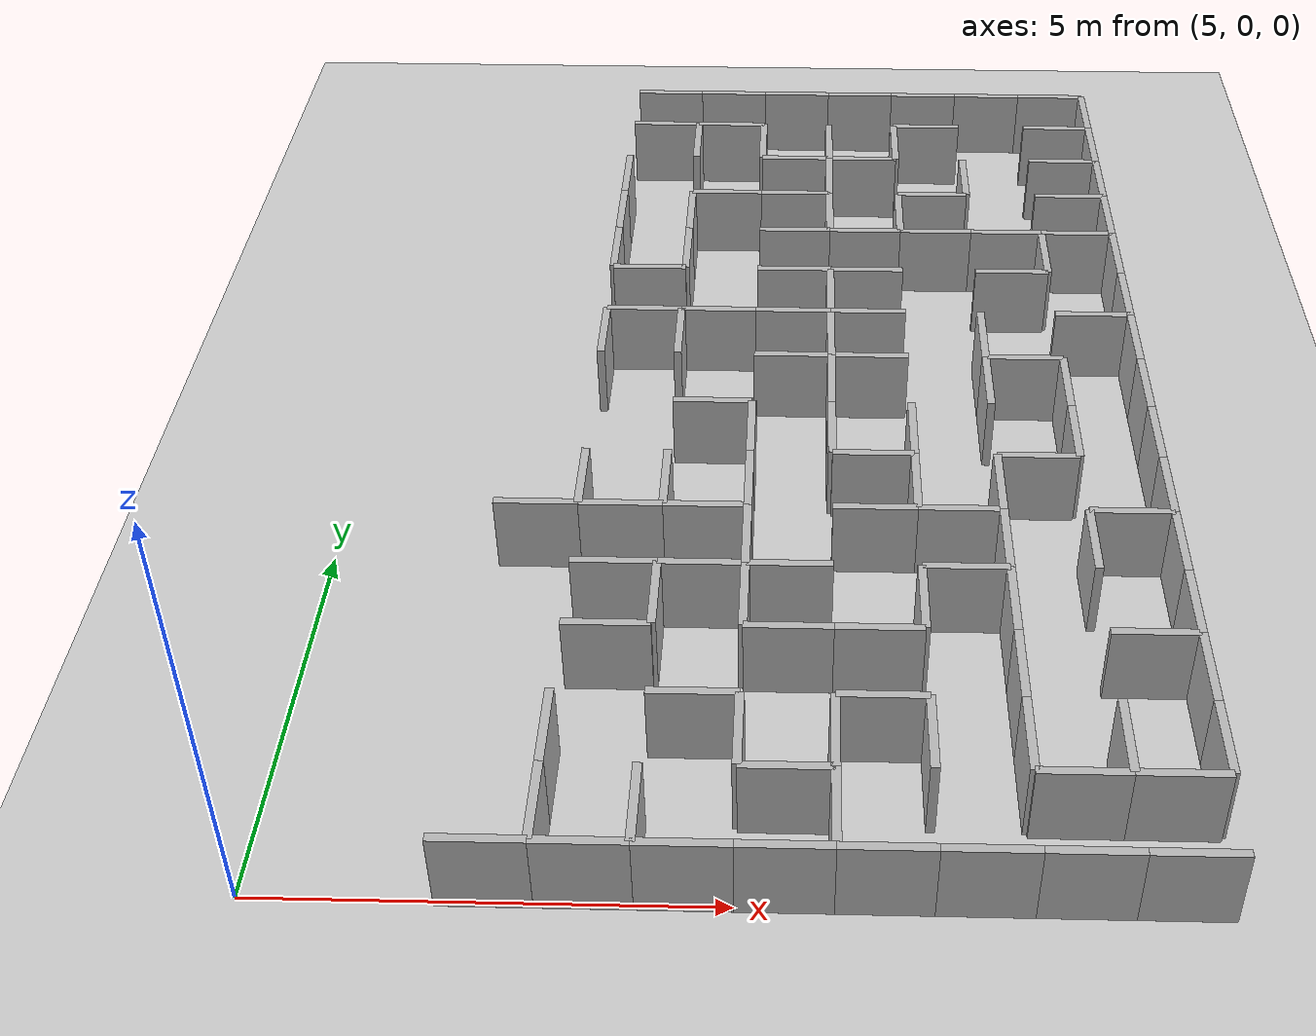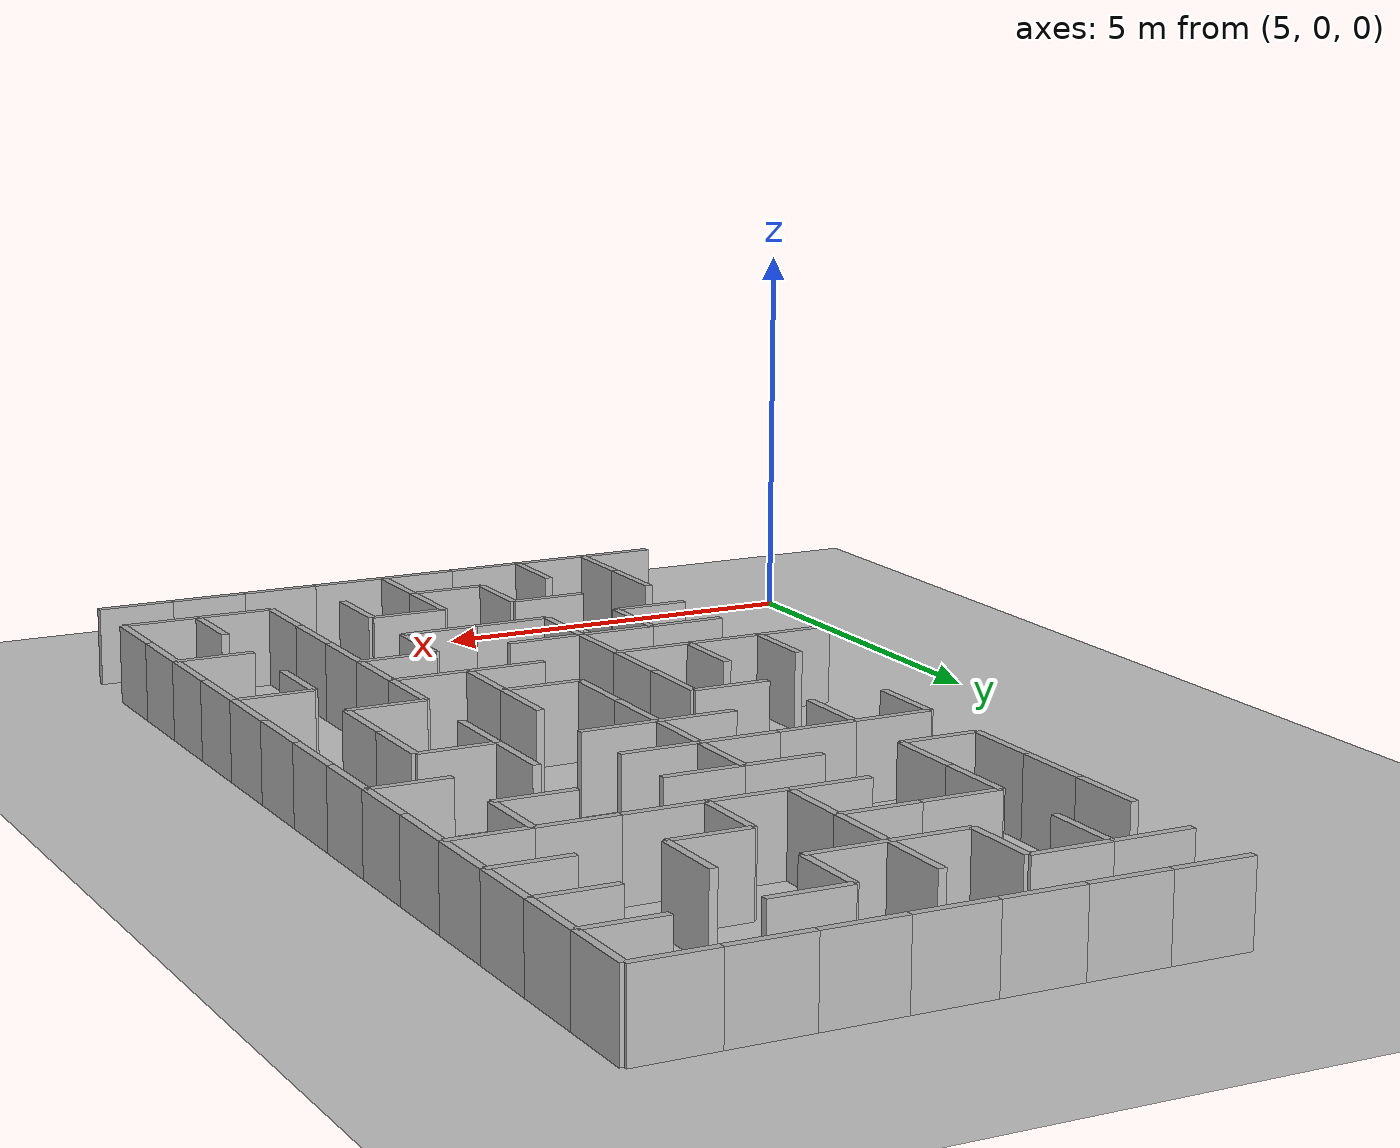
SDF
<sdf version="1.6">
 <world name="maze">
  <include><uri>model://ground_plane</uri></include>
  <model name="wall_r0_c8_N_b">
   <static>true</static>
   <pose>8.5 15.0 0.5 0 0 0</pose>
   <link name="link">
    <collision name="collision"><geometry><box><size>1.0 0.1 1.0</size></box></geometry></collision>
    <visual name="visual"><geometry><box><size>1.0 0.1 1.0</size></box></geometry></visual>
   </link>
  </model>
  <model name="wall_r0_c9_N_b">
   <static>true</static>
   <pose>9.5 15.0 0.5 0 0 0</pose>
   <link name="link">
    <collision name="collision"><geometry><box><size>1.0 0.1 1.0</size></box></geometry></collision>
    <visual name="visual"><geometry><box><size>1.0 0.1 1.0</size></box></geometry></visual>
   </link>
  </model>
  <model name="wall_r0_c10_N_b">
   <static>true</static>
   <pose>10.5 15.0 0.5 0 0 0</pose>
   <link name="link">
    <collision name="collision"><geometry><box><size>1.0 0.1 1.0</size></box></geometry></collision>
    <visual name="visual"><geometry><box><size>1.0 0.1 1.0</size></box></geometry></visual>
   </link>
  </model>
  <model name="wall_r0_c11_N_b">
   <static>true</static>
   <pose>11.5 15.0 0.5 0 0 0</pose>
   <link name="link">
    <collision name="collision"><geometry><box><size>1.0 0.1 1.0</size></box></geometry></collision>
    <visual name="visual"><geometry><box><size>1.0 0.1 1.0</size></box></geometry></visual>
   </link>
  </model>
  <model name="wall_r0_c12_N_b">
   <static>true</static>
   <pose>12.5 15.0 0.5 0 0 0</pose>
   <link name="link">
    <collision name="collision"><geometry><box><size>1.0 0.1 1.0</size></box></geometry></collision>
    <visual name="visual"><geometry><box><size>1.0 0.1 1.0</size></box></geometry></visual>
   </link>
  </model>
  <model name="wall_r0_c13_N_b">
   <static>true</static>
   <pose>13.5 15.0 0.5 0 0 0</pose>
   <link name="link">
    <collision name="collision"><geometry><box><size>1.0 0.1 1.0</size></box></geometry></collision>
    <visual name="visual"><geometry><box><size>1.0 0.1 1.0</size></box></geometry></visual>
   </link>
  </model>
  <model name="wall_r0_c14_N_b">
   <static>true</static>
   <pose>14.5 15.0 0.5 0 0 0</pose>
   <link name="link">
    <collision name="collision"><geometry><box><size>1.0 0.1 1.0</size></box></geometry></collision>
    <visual name="visual"><geometry><box><size>1.0 0.1 1.0</size></box></geometry></visual>
   </link>
  </model>
  <model name="wall_r0_c14_E_b">
   <static>true</static>
   <pose>15.0 14.5 0.5 0 0 0</pose>
   <link name="link">
    <collision name="collision"><geometry><box><size>0.1 1.0 1.0</size></box></geometry></collision>
    <visual name="visual"><geometry><box><size>0.1 1.0 1.0</size></box></geometry></visual>
   </link>
  </model>
  <model name="wall_r1_c8_N">
   <static>true</static>
   <pose>8.5 14.0 0.5 0 0 0</pose>
   <link name="link">
    <collision name="collision"><geometry><box><size>1.0 0.1 1.0</size></box></geometry></collision>
    <visual name="visual"><geometry><box><size>1.0 0.1 1.0</size></box></geometry></visual>
   </link>
  </model>
  <model name="wall_r1_c9_N">
   <static>true</static>
   <pose>9.5 14.0 0.5 0 0 0</pose>
   <link name="link">
    <collision name="collision"><geometry><box><size>1.0 0.1 1.0</size></box></geometry></collision>
    <visual name="visual"><geometry><box><size>1.0 0.1 1.0</size></box></geometry></visual>
   </link>
  </model>
  <model name="wall_r1_c9_W">
   <static>true</static>
   <pose>9.0 13.5 0.5 0 0 0</pose>
   <link name="link">
    <collision name="collision"><geometry><box><size>0.1 1.0 1.0</size></box></geometry></collision>
    <visual name="visual"><geometry><box><size>0.1 1.0 1.0</size></box></geometry></visual>
   </link>
  </model>
  <model name="wall_r1_c10_W">
   <static>true</static>
   <pose>10.0 13.5 0.5 0 0 0</pose>
   <link name="link">
    <collision name="collision"><geometry><box><size>0.1 1.0 1.0</size></box></geometry></collision>
    <visual name="visual"><geometry><box><size>0.1 1.0 1.0</size></box></geometry></visual>
   </link>
  </model>
  <model name="wall_r1_c11_W">
   <static>true</static>
   <pose>11.0 13.5 0.5 0 0 0</pose>
   <link name="link">
    <collision name="collision"><geometry><box><size>0.1 1.0 1.0</size></box></geometry></collision>
    <visual name="visual"><geometry><box><size>0.1 1.0 1.0</size></box></geometry></visual>
   </link>
  </model>
  <model name="wall_r1_c12_N">
   <static>true</static>
   <pose>12.5 14.0 0.5 0 0 0</pose>
   <link name="link">
    <collision name="collision"><geometry><box><size>1.0 0.1 1.0</size></box></geometry></collision>
    <visual name="visual"><geometry><box><size>1.0 0.1 1.0</size></box></geometry></visual>
   </link>
  </model>
  <model name="wall_r1_c12_W">
   <static>true</static>
   <pose>12.0 13.5 0.5 0 0 0</pose>
   <link name="link">
    <collision name="collision"><geometry><box><size>0.1 1.0 1.0</size></box></geometry></collision>
    <visual name="visual"><geometry><box><size>0.1 1.0 1.0</size></box></geometry></visual>
   </link>
  </model>
  <model name="wall_r1_c14_N">
   <static>true</static>
   <pose>14.5 14.0 0.5 0 0 0</pose>
   <link name="link">
    <collision name="collision"><geometry><box><size>1.0 0.1 1.0</size></box></geometry></collision>
    <visual name="visual"><geometry><box><size>1.0 0.1 1.0</size></box></geometry></visual>
   </link>
  </model>
  <model name="wall_r1_c14_E_b">
   <static>true</static>
   <pose>15.0 13.5 0.5 0 0 0</pose>
   <link name="link">
    <collision name="collision"><geometry><box><size>0.1 1.0 1.0</size></box></geometry></collision>
    <visual name="visual"><geometry><box><size>0.1 1.0 1.0</size></box></geometry></visual>
   </link>
  </model>
  <model name="wall_r2_c8_W">
   <static>true</static>
   <pose>8.0 12.5 0.5 0 0 0</pose>
   <link name="link">
    <collision name="collision"><geometry><box><size>0.1 1.0 1.0</size></box></geometry></collision>
    <visual name="visual"><geometry><box><size>0.1 1.0 1.0</size></box></geometry></visual>
   </link>
  </model>
  <model name="wall_r2_c10_N">
   <static>true</static>
   <pose>10.5 13.0 0.5 0 0 0</pose>
   <link name="link">
    <collision name="collision"><geometry><box><size>1.0 0.1 1.0</size></box></geometry></collision>
    <visual name="visual"><geometry><box><size>1.0 0.1 1.0</size></box></geometry></visual>
   </link>
  </model>
  <model name="wall_r2_c11_N">
   <static>true</static>
   <pose>11.5 13.0 0.5 0 0 0</pose>
   <link name="link">
    <collision name="collision"><geometry><box><size>1.0 0.1 1.0</size></box></geometry></collision>
    <visual name="visual"><geometry><box><size>1.0 0.1 1.0</size></box></geometry></visual>
   </link>
  </model>
  <model name="wall_r2_c11_W">
   <static>true</static>
   <pose>11.0 12.5 0.5 0 0 0</pose>
   <link name="link">
    <collision name="collision"><geometry><box><size>0.1 1.0 1.0</size></box></geometry></collision>
    <visual name="visual"><geometry><box><size>0.1 1.0 1.0</size></box></geometry></visual>
   </link>
  </model>
  <model name="wall_r2_c13_W">
   <static>true</static>
   <pose>13.0 12.5 0.5 0 0 0</pose>
   <link name="link">
    <collision name="collision"><geometry><box><size>0.1 1.0 1.0</size></box></geometry></collision>
    <visual name="visual"><geometry><box><size>0.1 1.0 1.0</size></box></geometry></visual>
   </link>
  </model>
  <model name="wall_r2_c14_N">
   <static>true</static>
   <pose>14.5 13.0 0.5 0 0 0</pose>
   <link name="link">
    <collision name="collision"><geometry><box><size>1.0 0.1 1.0</size></box></geometry></collision>
    <visual name="visual"><geometry><box><size>1.0 0.1 1.0</size></box></geometry></visual>
   </link>
  </model>
  <model name="wall_r2_c14_E_b">
   <static>true</static>
   <pose>15.0 12.5 0.5 0 0 0</pose>
   <link name="link">
    <collision name="collision"><geometry><box><size>0.1 1.0 1.0</size></box></geometry></collision>
    <visual name="visual"><geometry><box><size>0.1 1.0 1.0</size></box></geometry></visual>
   </link>
  </model>
  <model name="wall_r3_c8_W">
   <static>true</static>
   <pose>8.0 11.5 0.5 0 0 0</pose>
   <link name="link">
    <collision name="collision"><geometry><box><size>0.1 1.0 1.0</size></box></geometry></collision>
    <visual name="visual"><geometry><box><size>0.1 1.0 1.0</size></box></geometry></visual>
   </link>
  </model>
  <model name="wall_r3_c9_N">
   <static>true</static>
   <pose>9.5 12.0 0.5 0 0 0</pose>
   <link name="link">
    <collision name="collision"><geometry><box><size>1.0 0.1 1.0</size></box></geometry></collision>
    <visual name="visual"><geometry><box><size>1.0 0.1 1.0</size></box></geometry></visual>
   </link>
  </model>
  <model name="wall_r3_c9_W">
   <static>true</static>
   <pose>9.0 11.5 0.5 0 0 0</pose>
   <link name="link">
    <collision name="collision"><geometry><box><size>0.1 1.0 1.0</size></box></geometry></collision>
    <visual name="visual"><geometry><box><size>0.1 1.0 1.0</size></box></geometry></visual>
   </link>
  </model>
  <model name="wall_r3_c10_N">
   <static>true</static>
   <pose>10.5 12.0 0.5 0 0 0</pose>
   <link name="link">
    <collision name="collision"><geometry><box><size>1.0 0.1 1.0</size></box></geometry></collision>
    <visual name="visual"><geometry><box><size>1.0 0.1 1.0</size></box></geometry></visual>
   </link>
  </model>
  <model name="wall_r3_c11_W">
   <static>true</static>
   <pose>11.0 11.5 0.5 0 0 0</pose>
   <link name="link">
    <collision name="collision"><geometry><box><size>0.1 1.0 1.0</size></box></geometry></collision>
    <visual name="visual"><geometry><box><size>0.1 1.0 1.0</size></box></geometry></visual>
   </link>
  </model>
  <model name="wall_r3_c12_N">
   <static>true</static>
   <pose>12.5 12.0 0.5 0 0 0</pose>
   <link name="link">
    <collision name="collision"><geometry><box><size>1.0 0.1 1.0</size></box></geometry></collision>
    <visual name="visual"><geometry><box><size>1.0 0.1 1.0</size></box></geometry></visual>
   </link>
  </model>
  <model name="wall_r3_c12_W">
   <static>true</static>
   <pose>12.0 11.5 0.5 0 0 0</pose>
   <link name="link">
    <collision name="collision"><geometry><box><size>0.1 1.0 1.0</size></box></geometry></collision>
    <visual name="visual"><geometry><box><size>0.1 1.0 1.0</size></box></geometry></visual>
   </link>
  </model>
  <model name="wall_r3_c14_N">
   <static>true</static>
   <pose>14.5 12.0 0.5 0 0 0</pose>
   <link name="link">
    <collision name="collision"><geometry><box><size>1.0 0.1 1.0</size></box></geometry></collision>
    <visual name="visual"><geometry><box><size>1.0 0.1 1.0</size></box></geometry></visual>
   </link>
  </model>
  <model name="wall_r3_c14_E_b">
   <static>true</static>
   <pose>15.0 11.5 0.5 0 0 0</pose>
   <link name="link">
    <collision name="collision"><geometry><box><size>0.1 1.0 1.0</size></box></geometry></collision>
    <visual name="visual"><geometry><box><size>0.1 1.0 1.0</size></box></geometry></visual>
   </link>
  </model>
  <model name="wall_r4_c8_W">
   <static>true</static>
   <pose>8.0 10.5 0.5 0 0 0</pose>
   <link name="link">
    <collision name="collision"><geometry><box><size>0.1 1.0 1.0</size></box></geometry></collision>
    <visual name="visual"><geometry><box><size>0.1 1.0 1.0</size></box></geometry></visual>
   </link>
  </model>
  <model name="wall_r4_c9_W">
   <static>true</static>
   <pose>9.0 10.5 0.5 0 0 0</pose>
   <link name="link">
    <collision name="collision"><geometry><box><size>0.1 1.0 1.0</size></box></geometry></collision>
    <visual name="visual"><geometry><box><size>0.1 1.0 1.0</size></box></geometry></visual>
   </link>
  </model>
  <model name="wall_r4_c10_N">
   <static>true</static>
   <pose>10.5 11.0 0.5 0 0 0</pose>
   <link name="link">
    <collision name="collision"><geometry><box><size>1.0 0.1 1.0</size></box></geometry></collision>
    <visual name="visual"><geometry><box><size>1.0 0.1 1.0</size></box></geometry></visual>
   </link>
  </model>
  <model name="wall_r4_c11_N">
   <static>true</static>
   <pose>11.5 11.0 0.5 0 0 0</pose>
   <link name="link">
    <collision name="collision"><geometry><box><size>1.0 0.1 1.0</size></box></geometry></collision>
    <visual name="visual"><geometry><box><size>1.0 0.1 1.0</size></box></geometry></visual>
   </link>
  </model>
  <model name="wall_r4_c12_N">
   <static>true</static>
   <pose>12.5 11.0 0.5 0 0 0</pose>
   <link name="link">
    <collision name="collision"><geometry><box><size>1.0 0.1 1.0</size></box></geometry></collision>
    <visual name="visual"><geometry><box><size>1.0 0.1 1.0</size></box></geometry></visual>
   </link>
  </model>
  <model name="wall_r4_c13_N">
   <static>true</static>
   <pose>13.5 11.0 0.5 0 0 0</pose>
   <link name="link">
    <collision name="collision"><geometry><box><size>1.0 0.1 1.0</size></box></geometry></collision>
    <visual name="visual"><geometry><box><size>1.0 0.1 1.0</size></box></geometry></visual>
   </link>
  </model>
  <model name="wall_r4_c14_N">
   <static>true</static>
   <pose>14.5 11.0 0.5 0 0 0</pose>
   <link name="link">
    <collision name="collision"><geometry><box><size>1.0 0.1 1.0</size></box></geometry></collision>
    <visual name="visual"><geometry><box><size>1.0 0.1 1.0</size></box></geometry></visual>
   </link>
  </model>
  <model name="wall_r4_c14_W">
   <static>true</static>
   <pose>14.0 10.5 0.5 0 0 0</pose>
   <link name="link">
    <collision name="collision"><geometry><box><size>0.1 1.0 1.0</size></box></geometry></collision>
    <visual name="visual"><geometry><box><size>0.1 1.0 1.0</size></box></geometry></visual>
   </link>
  </model>
  <model name="wall_r4_c14_E_b">
   <static>true</static>
   <pose>15.0 10.5 0.5 0 0 0</pose>
   <link name="link">
    <collision name="collision"><geometry><box><size>0.1 1.0 1.0</size></box></geometry></collision>
    <visual name="visual"><geometry><box><size>0.1 1.0 1.0</size></box></geometry></visual>
   </link>
  </model>
  <model name="wall_r5_c8_N">
   <static>true</static>
   <pose>8.5 10.0 0.5 0 0 0</pose>
   <link name="link">
    <collision name="collision"><geometry><box><size>1.0 0.1 1.0</size></box></geometry></collision>
    <visual name="visual"><geometry><box><size>1.0 0.1 1.0</size></box></geometry></visual>
   </link>
  </model>
  <model name="wall_r5_c10_N">
   <static>true</static>
   <pose>10.5 10.0 0.5 0 0 0</pose>
   <link name="link">
    <collision name="collision"><geometry><box><size>1.0 0.1 1.0</size></box></geometry></collision>
    <visual name="visual"><geometry><box><size>1.0 0.1 1.0</size></box></geometry></visual>
   </link>
  </model>
  <model name="wall_r5_c11_N">
   <static>true</static>
   <pose>11.5 10.0 0.5 0 0 0</pose>
   <link name="link">
    <collision name="collision"><geometry><box><size>1.0 0.1 1.0</size></box></geometry></collision>
    <visual name="visual"><geometry><box><size>1.0 0.1 1.0</size></box></geometry></visual>
   </link>
  </model>
  <model name="wall_r5_c11_W">
   <static>true</static>
   <pose>11.0 9.5 0.5 0 0 0</pose>
   <link name="link">
    <collision name="collision"><geometry><box><size>0.1 1.0 1.0</size></box></geometry></collision>
    <visual name="visual"><geometry><box><size>0.1 1.0 1.0</size></box></geometry></visual>
   </link>
  </model>
  <model name="wall_r5_c13_N">
   <static>true</static>
   <pose>13.5 10.0 0.5 0 0 0</pose>
   <link name="link">
    <collision name="collision"><geometry><box><size>1.0 0.1 1.0</size></box></geometry></collision>
    <visual name="visual"><geometry><box><size>1.0 0.1 1.0</size></box></geometry></visual>
   </link>
  </model>
  <model name="wall_r5_c14_E_b">
   <static>true</static>
   <pose>15.0 9.5 0.5 0 0 0</pose>
   <link name="link">
    <collision name="collision"><geometry><box><size>0.1 1.0 1.0</size></box></geometry></collision>
    <visual name="visual"><geometry><box><size>0.1 1.0 1.0</size></box></geometry></visual>
   </link>
  </model>
  <model name="wall_r6_c8_N">
   <static>true</static>
   <pose>8.5 9.0 0.5 0 0 0</pose>
   <link name="link">
    <collision name="collision"><geometry><box><size>1.0 0.1 1.0</size></box></geometry></collision>
    <visual name="visual"><geometry><box><size>1.0 0.1 1.0</size></box></geometry></visual>
   </link>
  </model>
  <model name="wall_r6_c8_W">
   <static>true</static>
   <pose>8.0 8.5 0.5 0 0 0</pose>
   <link name="link">
    <collision name="collision"><geometry><box><size>0.1 1.0 1.0</size></box></geometry></collision>
    <visual name="visual"><geometry><box><size>0.1 1.0 1.0</size></box></geometry></visual>
   </link>
  </model>
  <model name="wall_r6_c9_N">
   <static>true</static>
   <pose>9.5 9.0 0.5 0 0 0</pose>
   <link name="link">
    <collision name="collision"><geometry><box><size>1.0 0.1 1.0</size></box></geometry></collision>
    <visual name="visual"><geometry><box><size>1.0 0.1 1.0</size></box></geometry></visual>
   </link>
  </model>
  <model name="wall_r6_c9_W">
   <static>true</static>
   <pose>9.0 8.5 0.5 0 0 0</pose>
   <link name="link">
    <collision name="collision"><geometry><box><size>0.1 1.0 1.0</size></box></geometry></collision>
    <visual name="visual"><geometry><box><size>0.1 1.0 1.0</size></box></geometry></visual>
   </link>
  </model>
  <model name="wall_r6_c10_N">
   <static>true</static>
   <pose>10.5 9.0 0.5 0 0 0</pose>
   <link name="link">
    <collision name="collision"><geometry><box><size>1.0 0.1 1.0</size></box></geometry></collision>
    <visual name="visual"><geometry><box><size>1.0 0.1 1.0</size></box></geometry></visual>
   </link>
  </model>
  <model name="wall_r6_c11_N">
   <static>true</static>
   <pose>11.5 9.0 0.5 0 0 0</pose>
   <link name="link">
    <collision name="collision"><geometry><box><size>1.0 0.1 1.0</size></box></geometry></collision>
    <visual name="visual"><geometry><box><size>1.0 0.1 1.0</size></box></geometry></visual>
   </link>
  </model>
  <model name="wall_r6_c11_W">
   <static>true</static>
   <pose>11.0 8.5 0.5 0 0 0</pose>
   <link name="link">
    <collision name="collision"><geometry><box><size>0.1 1.0 1.0</size></box></geometry></collision>
    <visual name="visual"><geometry><box><size>0.1 1.0 1.0</size></box></geometry></visual>
   </link>
  </model>
  <model name="wall_r6_c13_W">
   <static>true</static>
   <pose>13.0 8.5 0.5 0 0 0</pose>
   <link name="link">
    <collision name="collision"><geometry><box><size>0.1 1.0 1.0</size></box></geometry></collision>
    <visual name="visual"><geometry><box><size>0.1 1.0 1.0</size></box></geometry></visual>
   </link>
  </model>
  <model name="wall_r6_c14_N">
   <static>true</static>
   <pose>14.5 9.0 0.5 0 0 0</pose>
   <link name="link">
    <collision name="collision"><geometry><box><size>1.0 0.1 1.0</size></box></geometry></collision>
    <visual name="visual"><geometry><box><size>1.0 0.1 1.0</size></box></geometry></visual>
   </link>
  </model>
  <model name="wall_r6_c14_E_b">
   <static>true</static>
   <pose>15.0 8.5 0.5 0 0 0</pose>
   <link name="link">
    <collision name="collision"><geometry><box><size>0.1 1.0 1.0</size></box></geometry></collision>
    <visual name="visual"><geometry><box><size>0.1 1.0 1.0</size></box></geometry></visual>
   </link>
  </model>
  <model name="wall_r7_c10_N">
   <static>true</static>
   <pose>10.5 8.0 0.5 0 0 0</pose>
   <link name="link">
    <collision name="collision"><geometry><box><size>1.0 0.1 1.0</size></box></geometry></collision>
    <visual name="visual"><geometry><box><size>1.0 0.1 1.0</size></box></geometry></visual>
   </link>
  </model>
  <model name="wall_r7_c11_N">
   <static>true</static>
   <pose>11.5 8.0 0.5 0 0 0</pose>
   <link name="link">
    <collision name="collision"><geometry><box><size>1.0 0.1 1.0</size></box></geometry></collision>
    <visual name="visual"><geometry><box><size>1.0 0.1 1.0</size></box></geometry></visual>
   </link>
  </model>
  <model name="wall_r7_c11_W">
   <static>true</static>
   <pose>11.0 7.5 0.5 0 0 0</pose>
   <link name="link">
    <collision name="collision"><geometry><box><size>0.1 1.0 1.0</size></box></geometry></collision>
    <visual name="visual"><geometry><box><size>0.1 1.0 1.0</size></box></geometry></visual>
   </link>
  </model>
  <model name="wall_r7_c13_N">
   <static>true</static>
   <pose>13.5 8.0 0.5 0 0 0</pose>
   <link name="link">
    <collision name="collision"><geometry><box><size>1.0 0.1 1.0</size></box></geometry></collision>
    <visual name="visual"><geometry><box><size>1.0 0.1 1.0</size></box></geometry></visual>
   </link>
  </model>
  <model name="wall_r7_c13_W">
   <static>true</static>
   <pose>13.0 7.5 0.5 0 0 0</pose>
   <link name="link">
    <collision name="collision"><geometry><box><size>0.1 1.0 1.0</size></box></geometry></collision>
    <visual name="visual"><geometry><box><size>0.1 1.0 1.0</size></box></geometry></visual>
   </link>
  </model>
  <model name="wall_r7_c14_W">
   <static>true</static>
   <pose>14.0 7.5 0.5 0 0 0</pose>
   <link name="link">
    <collision name="collision"><geometry><box><size>0.1 1.0 1.0</size></box></geometry></collision>
    <visual name="visual"><geometry><box><size>0.1 1.0 1.0</size></box></geometry></visual>
   </link>
  </model>
  <model name="wall_r7_c14_E_b">
   <static>true</static>
   <pose>15.0 7.5 0.5 0 0 0</pose>
   <link name="link">
    <collision name="collision"><geometry><box><size>0.1 1.0 1.0</size></box></geometry></collision>
    <visual name="visual"><geometry><box><size>0.1 1.0 1.0</size></box></geometry></visual>
   </link>
  </model>
  <model name="wall_r8_c9_N">
   <static>true</static>
   <pose>9.5 7.0 0.5 0 0 0</pose>
   <link name="link">
    <collision name="collision"><geometry><box><size>1.0 0.1 1.0</size></box></geometry></collision>
    <visual name="visual"><geometry><box><size>1.0 0.1 1.0</size></box></geometry></visual>
   </link>
  </model>
  <model name="wall_r8_c10_W">
   <static>true</static>
   <pose>10.0 6.5 0.5 0 0 0</pose>
   <link name="link">
    <collision name="collision"><geometry><box><size>0.1 1.0 1.0</size></box></geometry></collision>
    <visual name="visual"><geometry><box><size>0.1 1.0 1.0</size></box></geometry></visual>
   </link>
  </model>
  <model name="wall_r8_c11_W">
   <static>true</static>
   <pose>11.0 6.5 0.5 0 0 0</pose>
   <link name="link">
    <collision name="collision"><geometry><box><size>0.1 1.0 1.0</size></box></geometry></collision>
    <visual name="visual"><geometry><box><size>0.1 1.0 1.0</size></box></geometry></visual>
   </link>
  </model>
  <model name="wall_r8_c12_W">
   <static>true</static>
   <pose>12.0 6.5 0.5 0 0 0</pose>
   <link name="link">
    <collision name="collision"><geometry><box><size>0.1 1.0 1.0</size></box></geometry></collision>
    <visual name="visual"><geometry><box><size>0.1 1.0 1.0</size></box></geometry></visual>
   </link>
  </model>
  <model name="wall_r8_c14_W">
   <static>true</static>
   <pose>14.0 6.5 0.5 0 0 0</pose>
   <link name="link">
    <collision name="collision"><geometry><box><size>0.1 1.0 1.0</size></box></geometry></collision>
    <visual name="visual"><geometry><box><size>0.1 1.0 1.0</size></box></geometry></visual>
   </link>
  </model>
  <model name="wall_r8_c14_E_b">
   <static>true</static>
   <pose>15.0 6.5 0.5 0 0 0</pose>
   <link name="link">
    <collision name="collision"><geometry><box><size>0.1 1.0 1.0</size></box></geometry></collision>
    <visual name="visual"><geometry><box><size>0.1 1.0 1.0</size></box></geometry></visual>
   </link>
  </model>
  <model name="wall_r9_c8_W">
   <static>true</static>
   <pose>8.0 5.5 0.5 0 0 0</pose>
   <link name="link">
    <collision name="collision"><geometry><box><size>0.1 1.0 1.0</size></box></geometry></collision>
    <visual name="visual"><geometry><box><size>0.1 1.0 1.0</size></box></geometry></visual>
   </link>
  </model>
  <model name="wall_r9_c9_W">
   <static>true</static>
   <pose>9.0 5.5 0.5 0 0 0</pose>
   <link name="link">
    <collision name="collision"><geometry><box><size>0.1 1.0 1.0</size></box></geometry></collision>
    <visual name="visual"><geometry><box><size>0.1 1.0 1.0</size></box></geometry></visual>
   </link>
  </model>
  <model name="wall_r9_c10_W">
   <static>true</static>
   <pose>10.0 5.5 0.5 0 0 0</pose>
   <link name="link">
    <collision name="collision"><geometry><box><size>0.1 1.0 1.0</size></box></geometry></collision>
    <visual name="visual"><geometry><box><size>0.1 1.0 1.0</size></box></geometry></visual>
   </link>
  </model>
  <model name="wall_r9_c11_N">
   <static>true</static>
   <pose>11.5 6.0 0.5 0 0 0</pose>
   <link name="link">
    <collision name="collision"><geometry><box><size>1.0 0.1 1.0</size></box></geometry></collision>
    <visual name="visual"><geometry><box><size>1.0 0.1 1.0</size></box></geometry></visual>
   </link>
  </model>
  <model name="wall_r9_c12_W">
   <static>true</static>
   <pose>12.0 5.5 0.5 0 0 0</pose>
   <link name="link">
    <collision name="collision"><geometry><box><size>0.1 1.0 1.0</size></box></geometry></collision>
    <visual name="visual"><geometry><box><size>0.1 1.0 1.0</size></box></geometry></visual>
   </link>
  </model>
  <model name="wall_r9_c13_N">
   <static>true</static>
   <pose>13.5 6.0 0.5 0 0 0</pose>
   <link name="link">
    <collision name="collision"><geometry><box><size>1.0 0.1 1.0</size></box></geometry></collision>
    <visual name="visual"><geometry><box><size>1.0 0.1 1.0</size></box></geometry></visual>
   </link>
  </model>
  <model name="wall_r9_c13_W">
   <static>true</static>
   <pose>13.0 5.5 0.5 0 0 0</pose>
   <link name="link">
    <collision name="collision"><geometry><box><size>0.1 1.0 1.0</size></box></geometry></collision>
    <visual name="visual"><geometry><box><size>0.1 1.0 1.0</size></box></geometry></visual>
   </link>
  </model>
  <model name="wall_r9_c14_E_b">
   <static>true</static>
   <pose>15.0 5.5 0.5 0 0 0</pose>
   <link name="link">
    <collision name="collision"><geometry><box><size>0.1 1.0 1.0</size></box></geometry></collision>
    <visual name="visual"><geometry><box><size>0.1 1.0 1.0</size></box></geometry></visual>
   </link>
  </model>
  <model name="wall_r10_c7_N">
   <static>true</static>
   <pose>7.5 5.0 0.5 0 0 0</pose>
   <link name="link">
    <collision name="collision"><geometry><box><size>1.0 0.1 1.0</size></box></geometry></collision>
    <visual name="visual"><geometry><box><size>1.0 0.1 1.0</size></box></geometry></visual>
   </link>
  </model>
  <model name="wall_r10_c8_N">
   <static>true</static>
   <pose>8.5 5.0 0.5 0 0 0</pose>
   <link name="link">
    <collision name="collision"><geometry><box><size>1.0 0.1 1.0</size></box></geometry></collision>
    <visual name="visual"><geometry><box><size>1.0 0.1 1.0</size></box></geometry></visual>
   </link>
  </model>
  <model name="wall_r10_c9_N">
   <static>true</static>
   <pose>9.5 5.0 0.5 0 0 0</pose>
   <link name="link">
    <collision name="collision"><geometry><box><size>1.0 0.1 1.0</size></box></geometry></collision>
    <visual name="visual"><geometry><box><size>1.0 0.1 1.0</size></box></geometry></visual>
   </link>
  </model>
  <model name="wall_r10_c10_W">
   <static>true</static>
   <pose>10.0 4.5 0.5 0 0 0</pose>
   <link name="link">
    <collision name="collision"><geometry><box><size>0.1 1.0 1.0</size></box></geometry></collision>
    <visual name="visual"><geometry><box><size>0.1 1.0 1.0</size></box></geometry></visual>
   </link>
  </model>
  <model name="wall_r10_c11_N">
   <static>true</static>
   <pose>11.5 5.0 0.5 0 0 0</pose>
   <link name="link">
    <collision name="collision"><geometry><box><size>1.0 0.1 1.0</size></box></geometry></collision>
    <visual name="visual"><geometry><box><size>1.0 0.1 1.0</size></box></geometry></visual>
   </link>
  </model>
  <model name="wall_r10_c12_N">
   <static>true</static>
   <pose>12.5 5.0 0.5 0 0 0</pose>
   <link name="link">
    <collision name="collision"><geometry><box><size>1.0 0.1 1.0</size></box></geometry></collision>
    <visual name="visual"><geometry><box><size>1.0 0.1 1.0</size></box></geometry></visual>
   </link>
  </model>
  <model name="wall_r10_c13_W">
   <static>true</static>
   <pose>13.0 4.5 0.5 0 0 0</pose>
   <link name="link">
    <collision name="collision"><geometry><box><size>0.1 1.0 1.0</size></box></geometry></collision>
    <visual name="visual"><geometry><box><size>0.1 1.0 1.0</size></box></geometry></visual>
   </link>
  </model>
  <model name="wall_r10_c14_N">
   <static>true</static>
   <pose>14.5 5.0 0.5 0 0 0</pose>
   <link name="link">
    <collision name="collision"><geometry><box><size>1.0 0.1 1.0</size></box></geometry></collision>
    <visual name="visual"><geometry><box><size>1.0 0.1 1.0</size></box></geometry></visual>
   </link>
  </model>
  <model name="wall_r10_c14_W">
   <static>true</static>
   <pose>14.0 4.5 0.5 0 0 0</pose>
   <link name="link">
    <collision name="collision"><geometry><box><size>0.1 1.0 1.0</size></box></geometry></collision>
    <visual name="visual"><geometry><box><size>0.1 1.0 1.0</size></box></geometry></visual>
   </link>
  </model>
  <model name="wall_r10_c14_E_b">
   <static>true</static>
   <pose>15.0 4.5 0.5 0 0 0</pose>
   <link name="link">
    <collision name="collision"><geometry><box><size>0.1 1.0 1.0</size></box></geometry></collision>
    <visual name="visual"><geometry><box><size>0.1 1.0 1.0</size></box></geometry></visual>
   </link>
  </model>
  <model name="wall_r11_c8_N">
   <static>true</static>
   <pose>8.5 4.0 0.5 0 0 0</pose>
   <link name="link">
    <collision name="collision"><geometry><box><size>1.0 0.1 1.0</size></box></geometry></collision>
    <visual name="visual"><geometry><box><size>1.0 0.1 1.0</size></box></geometry></visual>
   </link>
  </model>
  <model name="wall_r11_c9_N">
   <static>true</static>
   <pose>9.5 4.0 0.5 0 0 0</pose>
   <link name="link">
    <collision name="collision"><geometry><box><size>1.0 0.1 1.0</size></box></geometry></collision>
    <visual name="visual"><geometry><box><size>1.0 0.1 1.0</size></box></geometry></visual>
   </link>
  </model>
  <model name="wall_r11_c9_W">
   <static>true</static>
   <pose>9.0 3.5 0.5 0 0 0</pose>
   <link name="link">
    <collision name="collision"><geometry><box><size>0.1 1.0 1.0</size></box></geometry></collision>
    <visual name="visual"><geometry><box><size>0.1 1.0 1.0</size></box></geometry></visual>
   </link>
  </model>
  <model name="wall_r11_c10_N">
   <static>true</static>
   <pose>10.5 4.0 0.5 0 0 0</pose>
   <link name="link">
    <collision name="collision"><geometry><box><size>1.0 0.1 1.0</size></box></geometry></collision>
    <visual name="visual"><geometry><box><size>1.0 0.1 1.0</size></box></geometry></visual>
   </link>
  </model>
  <model name="wall_r11_c10_W">
   <static>true</static>
   <pose>10.0 3.5 0.5 0 0 0</pose>
   <link name="link">
    <collision name="collision"><geometry><box><size>0.1 1.0 1.0</size></box></geometry></collision>
    <visual name="visual"><geometry><box><size>0.1 1.0 1.0</size></box></geometry></visual>
   </link>
  </model>
  <model name="wall_r11_c12_N">
   <static>true</static>
   <pose>12.5 4.0 0.5 0 0 0</pose>
   <link name="link">
    <collision name="collision"><geometry><box><size>1.0 0.1 1.0</size></box></geometry></collision>
    <visual name="visual"><geometry><box><size>1.0 0.1 1.0</size></box></geometry></visual>
   </link>
  </model>
  <model name="wall_r11_c12_W">
   <static>true</static>
   <pose>12.0 3.5 0.5 0 0 0</pose>
   <link name="link">
    <collision name="collision"><geometry><box><size>0.1 1.0 1.0</size></box></geometry></collision>
    <visual name="visual"><geometry><box><size>0.1 1.0 1.0</size></box></geometry></visual>
   </link>
  </model>
  <model name="wall_r11_c13_W">
   <static>true</static>
   <pose>13.0 3.5 0.5 0 0 0</pose>
   <link name="link">
    <collision name="collision"><geometry><box><size>0.1 1.0 1.0</size></box></geometry></collision>
    <visual name="visual"><geometry><box><size>0.1 1.0 1.0</size></box></geometry></visual>
   </link>
  </model>
  <model name="wall_r11_c14_E_b">
   <static>true</static>
   <pose>15.0 3.5 0.5 0 0 0</pose>
   <link name="link">
    <collision name="collision"><geometry><box><size>0.1 1.0 1.0</size></box></geometry></collision>
    <visual name="visual"><geometry><box><size>0.1 1.0 1.0</size></box></geometry></visual>
   </link>
  </model>
  <model name="wall_r12_c8_N">
   <static>true</static>
   <pose>8.5 3.0 0.5 0 0 0</pose>
   <link name="link">
    <collision name="collision"><geometry><box><size>1.0 0.1 1.0</size></box></geometry></collision>
    <visual name="visual"><geometry><box><size>1.0 0.1 1.0</size></box></geometry></visual>
   </link>
  </model>
  <model name="wall_r12_c10_N">
   <static>true</static>
   <pose>10.5 3.0 0.5 0 0 0</pose>
   <link name="link">
    <collision name="collision"><geometry><box><size>1.0 0.1 1.0</size></box></geometry></collision>
    <visual name="visual"><geometry><box><size>1.0 0.1 1.0</size></box></geometry></visual>
   </link>
  </model>
  <model name="wall_r12_c11_N">
   <static>true</static>
   <pose>11.5 3.0 0.5 0 0 0</pose>
   <link name="link">
    <collision name="collision"><geometry><box><size>1.0 0.1 1.0</size></box></geometry></collision>
    <visual name="visual"><geometry><box><size>1.0 0.1 1.0</size></box></geometry></visual>
   </link>
  </model>
  <model name="wall_r12_c13_W">
   <static>true</static>
   <pose>13.0 2.5 0.5 0 0 0</pose>
   <link name="link">
    <collision name="collision"><geometry><box><size>0.1 1.0 1.0</size></box></geometry></collision>
    <visual name="visual"><geometry><box><size>0.1 1.0 1.0</size></box></geometry></visual>
   </link>
  </model>
  <model name="wall_r12_c14_N">
   <static>true</static>
   <pose>14.5 3.0 0.5 0 0 0</pose>
   <link name="link">
    <collision name="collision"><geometry><box><size>1.0 0.1 1.0</size></box></geometry></collision>
    <visual name="visual"><geometry><box><size>1.0 0.1 1.0</size></box></geometry></visual>
   </link>
  </model>
  <model name="wall_r12_c14_E_b">
   <static>true</static>
   <pose>15.0 2.5 0.5 0 0 0</pose>
   <link name="link">
    <collision name="collision"><geometry><box><size>0.1 1.0 1.0</size></box></geometry></collision>
    <visual name="visual"><geometry><box><size>0.1 1.0 1.0</size></box></geometry></visual>
   </link>
  </model>
  <model name="wall_r13_c8_W">
   <static>true</static>
   <pose>8.0 1.5 0.5 0 0 0</pose>
   <link name="link">
    <collision name="collision"><geometry><box><size>0.1 1.0 1.0</size></box></geometry></collision>
    <visual name="visual"><geometry><box><size>0.1 1.0 1.0</size></box></geometry></visual>
   </link>
  </model>
  <model name="wall_r13_c9_N">
   <static>true</static>
   <pose>9.5 2.0 0.5 0 0 0</pose>
   <link name="link">
    <collision name="collision"><geometry><box><size>1.0 0.1 1.0</size></box></geometry></collision>
    <visual name="visual"><geometry><box><size>1.0 0.1 1.0</size></box></geometry></visual>
   </link>
  </model>
  <model name="wall_r13_c10_W">
   <static>true</static>
   <pose>10.0 1.5 0.5 0 0 0</pose>
   <link name="link">
    <collision name="collision"><geometry><box><size>0.1 1.0 1.0</size></box></geometry></collision>
    <visual name="visual"><geometry><box><size>0.1 1.0 1.0</size></box></geometry></visual>
   </link>
  </model>
  <model name="wall_r13_c11_N">
   <static>true</static>
   <pose>11.5 2.0 0.5 0 0 0</pose>
   <link name="link">
    <collision name="collision"><geometry><box><size>1.0 0.1 1.0</size></box></geometry></collision>
    <visual name="visual"><geometry><box><size>1.0 0.1 1.0</size></box></geometry></visual>
   </link>
  </model>
  <model name="wall_r13_c11_W">
   <static>true</static>
   <pose>11.0 1.5 0.5 0 0 0</pose>
   <link name="link">
    <collision name="collision"><geometry><box><size>0.1 1.0 1.0</size></box></geometry></collision>
    <visual name="visual"><geometry><box><size>0.1 1.0 1.0</size></box></geometry></visual>
   </link>
  </model>
  <model name="wall_r13_c12_W">
   <static>true</static>
   <pose>12.0 1.5 0.5 0 0 0</pose>
   <link name="link">
    <collision name="collision"><geometry><box><size>0.1 1.0 1.0</size></box></geometry></collision>
    <visual name="visual"><geometry><box><size>0.1 1.0 1.0</size></box></geometry></visual>
   </link>
  </model>
  <model name="wall_r13_c13_W">
   <static>true</static>
   <pose>13.0 1.5 0.5 0 0 0</pose>
   <link name="link">
    <collision name="collision"><geometry><box><size>0.1 1.0 1.0</size></box></geometry></collision>
    <visual name="visual"><geometry><box><size>0.1 1.0 1.0</size></box></geometry></visual>
   </link>
  </model>
  <model name="wall_r13_c14_W">
   <static>true</static>
   <pose>14.0 1.5 0.5 0 0 0</pose>
   <link name="link">
    <collision name="collision"><geometry><box><size>0.1 1.0 1.0</size></box></geometry></collision>
    <visual name="visual"><geometry><box><size>0.1 1.0 1.0</size></box></geometry></visual>
   </link>
  </model>
  <model name="wall_r13_c14_E_b">
   <static>true</static>
   <pose>15.0 1.5 0.5 0 0 0</pose>
   <link name="link">
    <collision name="collision"><geometry><box><size>0.1 1.0 1.0</size></box></geometry></collision>
    <visual name="visual"><geometry><box><size>0.1 1.0 1.0</size></box></geometry></visual>
   </link>
  </model>
  <model name="wall_r14_c7_S_b">
   <static>true</static>
   <pose>7.5 0.0 0.5 0 0 0</pose>
   <link name="link">
    <collision name="collision"><geometry><box><size>1.0 0.1 1.0</size></box></geometry></collision>
    <visual name="visual"><geometry><box><size>1.0 0.1 1.0</size></box></geometry></visual>
   </link>
  </model>
  <model name="wall_r14_c8_W">
   <static>true</static>
   <pose>8.0 0.5 0.5 0 0 0</pose>
   <link name="link">
    <collision name="collision"><geometry><box><size>0.1 1.0 1.0</size></box></geometry></collision>
    <visual name="visual"><geometry><box><size>0.1 1.0 1.0</size></box></geometry></visual>
   </link>
  </model>
  <model name="wall_r14_c8_S_b">
   <static>true</static>
   <pose>8.5 0.0 0.5 0 0 0</pose>
   <link name="link">
    <collision name="collision"><geometry><box><size>1.0 0.1 1.0</size></box></geometry></collision>
    <visual name="visual"><geometry><box><size>1.0 0.1 1.0</size></box></geometry></visual>
   </link>
  </model>
  <model name="wall_r14_c9_W">
   <static>true</static>
   <pose>9.0 0.5 0.5 0 0 0</pose>
   <link name="link">
    <collision name="collision"><geometry><box><size>0.1 1.0 1.0</size></box></geometry></collision>
    <visual name="visual"><geometry><box><size>0.1 1.0 1.0</size></box></geometry></visual>
   </link>
  </model>
  <model name="wall_r14_c9_S_b">
   <static>true</static>
   <pose>9.5 0.0 0.5 0 0 0</pose>
   <link name="link">
    <collision name="collision"><geometry><box><size>1.0 0.1 1.0</size></box></geometry></collision>
    <visual name="visual"><geometry><box><size>1.0 0.1 1.0</size></box></geometry></visual>
   </link>
  </model>
  <model name="wall_r14_c10_N">
   <static>true</static>
   <pose>10.5 1.0 0.5 0 0 0</pose>
   <link name="link">
    <collision name="collision"><geometry><box><size>1.0 0.1 1.0</size></box></geometry></collision>
    <visual name="visual"><geometry><box><size>1.0 0.1 1.0</size></box></geometry></visual>
   </link>
  </model>
  <model name="wall_r14_c10_S_b">
   <static>true</static>
   <pose>10.5 0.0 0.5 0 0 0</pose>
   <link name="link">
    <collision name="collision"><geometry><box><size>1.0 0.1 1.0</size></box></geometry></collision>
    <visual name="visual"><geometry><box><size>1.0 0.1 1.0</size></box></geometry></visual>
   </link>
  </model>
  <model name="wall_r14_c11_W">
   <static>true</static>
   <pose>11.0 0.5 0.5 0 0 0</pose>
   <link name="link">
    <collision name="collision"><geometry><box><size>0.1 1.0 1.0</size></box></geometry></collision>
    <visual name="visual"><geometry><box><size>0.1 1.0 1.0</size></box></geometry></visual>
   </link>
  </model>
  <model name="wall_r14_c11_S_b">
   <static>true</static>
   <pose>11.5 0.0 0.5 0 0 0</pose>
   <link name="link">
    <collision name="collision"><geometry><box><size>1.0 0.1 1.0</size></box></geometry></collision>
    <visual name="visual"><geometry><box><size>1.0 0.1 1.0</size></box></geometry></visual>
   </link>
  </model>
  <model name="wall_r14_c12_S_b">
   <static>true</static>
   <pose>12.5 0.0 0.5 0 0 0</pose>
   <link name="link">
    <collision name="collision"><geometry><box><size>1.0 0.1 1.0</size></box></geometry></collision>
    <visual name="visual"><geometry><box><size>1.0 0.1 1.0</size></box></geometry></visual>
   </link>
  </model>
  <model name="wall_r14_c13_N">
   <static>true</static>
   <pose>13.5 1.0 0.5 0 0 0</pose>
   <link name="link">
    <collision name="collision"><geometry><box><size>1.0 0.1 1.0</size></box></geometry></collision>
    <visual name="visual"><geometry><box><size>1.0 0.1 1.0</size></box></geometry></visual>
   </link>
  </model>
  <model name="wall_r14_c13_S_b">
   <static>true</static>
   <pose>13.5 0.0 0.5 0 0 0</pose>
   <link name="link">
    <collision name="collision"><geometry><box><size>1.0 0.1 1.0</size></box></geometry></collision>
    <visual name="visual"><geometry><box><size>1.0 0.1 1.0</size></box></geometry></visual>
   </link>
  </model>
  <model name="wall_r14_c14_N">
   <static>true</static>
   <pose>14.5 1.0 0.5 0 0 0</pose>
   <link name="link">
    <collision name="collision"><geometry><box><size>1.0 0.1 1.0</size></box></geometry></collision>
    <visual name="visual"><geometry><box><size>1.0 0.1 1.0</size></box></geometry></visual>
   </link>
  </model>
  <model name="wall_r14_c14_S_b">
   <static>true</static>
   <pose>14.5 0.0 0.5 0 0 0</pose>
   <link name="link">
    <collision name="collision"><geometry><box><size>1.0 0.1 1.0</size></box></geometry></collision>
    <visual name="visual"><geometry><box><size>1.0 0.1 1.0</size></box></geometry></visual>
   </link>
  </model>
 </world>
</sdf>
